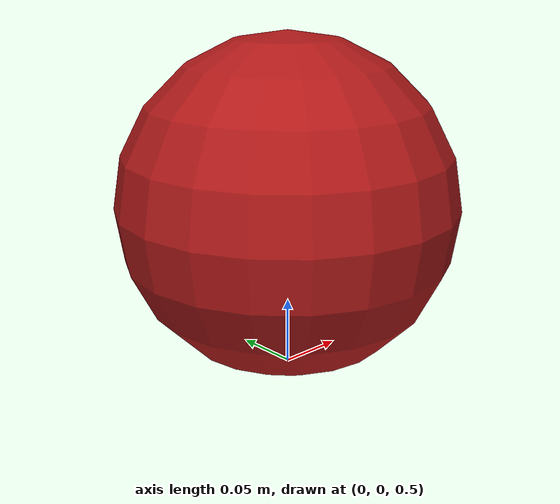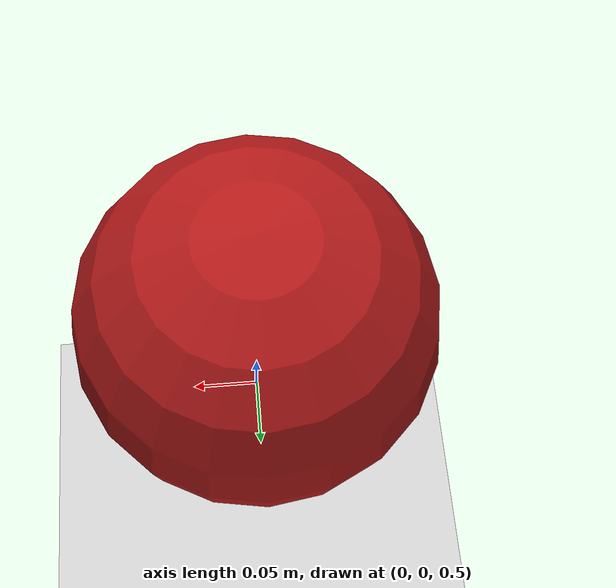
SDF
<?xml version="1.0" ?>
<sdf version="1.4">
  <!-- We use a custom world for the rrbot so that the camera angle is launched correctly -->

  <world name="default">
    <include>
      <uri>model://ground_plane</uri>
    </include>
    <include>
      <uri>model://ball</uri>
      <pose>0 0 0.5 0 0 0</pose>
    </include>

    <!-- Global light source -->
    <include>
      <uri>model://sun</uri>
    </include>

    <!-- Focus camera on tall pendulum -->
    <gui fullscreen='0'>
      <camera name='user_camera'>
        <pose>0.004663 0.615873 0.5 0.000000 0.394581 -1.551001</pose>
        <view_controller>orbit</view_controller>
      </camera>
    </gui>
    <!-- Increase simulation speed. Keep max_step_size=0.001 to maintain same quality -->
    <physics type='ode'>
      <max_step_size>0.001</max_step_size>
      <real_time_update_rate>1000.0</real_time_update_rate>
      <real_time_factor>10.0</real_time_factor>
    </physics>
  </world>
</sdf>

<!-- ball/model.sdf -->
<sdf version="1.5">
  <model name="ball">
    <pose>0 0 0 0 0 0</pose>
    <link name="link">
      <pose>0 0 0.127 0 0 0</pose>
      <inertial>
        <mass>0.15</mass>
        <inertia>
          <ixx>0.003226667</ixx>
          <ixy>0</ixy>
          <ixz>0</ixz>
          <iyy>0.003226667</iyy>
          <iyz>0</iyz>
          <izz>0.003226667</izz>
        </inertia>
      </inertial>

      <visual name="visual">
        <geometry>
          <sphere>
            <radius>0.127</radius>
          </sphere>
        </geometry>
        <material>
          <ambient>0.6 0.1 0.1 1</ambient>
          <diffuse>0.7 0.1 0.1 1</diffuse>
          <specular>0 0 0 0</specular>
          <emissive>0.0 0 0 1</emissive>
        </material>
      </visual>

      <collision name="collision">
        <geometry>
          <sphere>
            <radius>0.127</radius>
          </sphere>
        </geometry>
        <surface>
          <bounce>
            <restitution_coefficient>0.6</restitution_coefficient>
            <threshold>0</threshold>
          </bounce>
          <contact>
            <ode>
              <max_vel>5</max_vel>
              <min_depth>0.001</min_depth>
            </ode>
          </contact>
        </surface>
      </collision>
    </link>
  </model>
</sdf>
